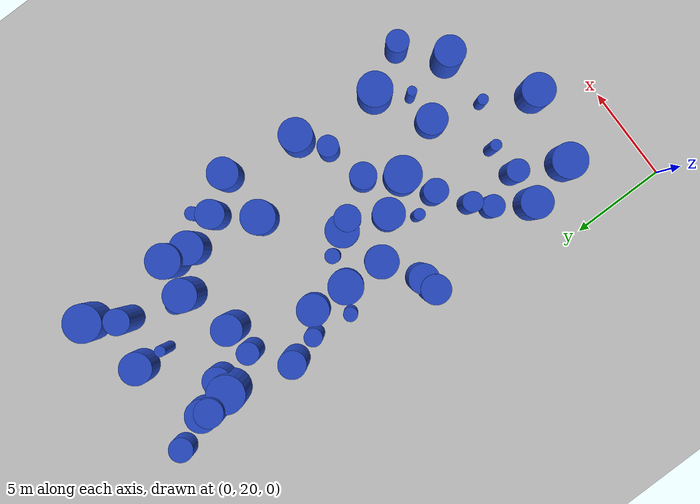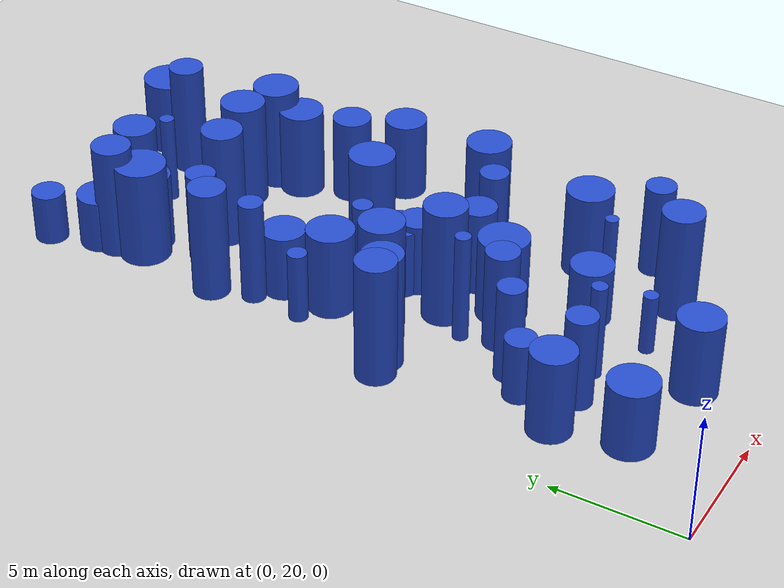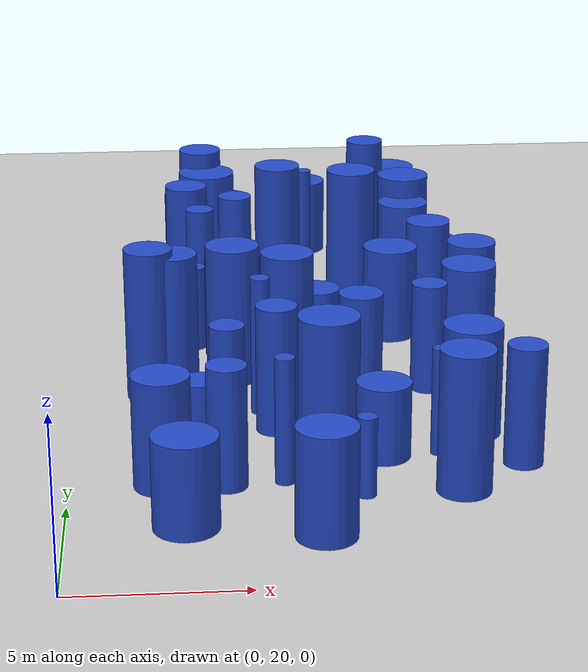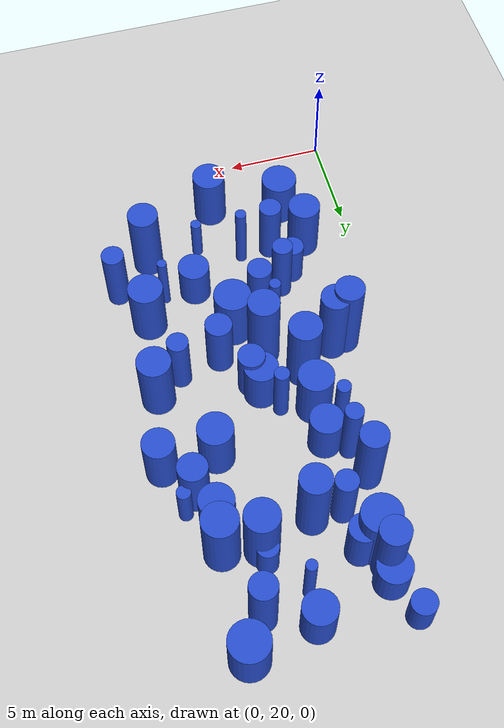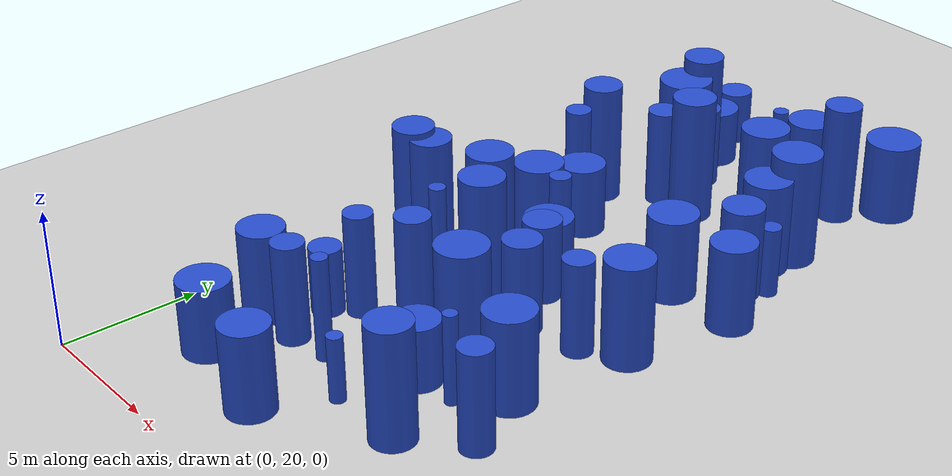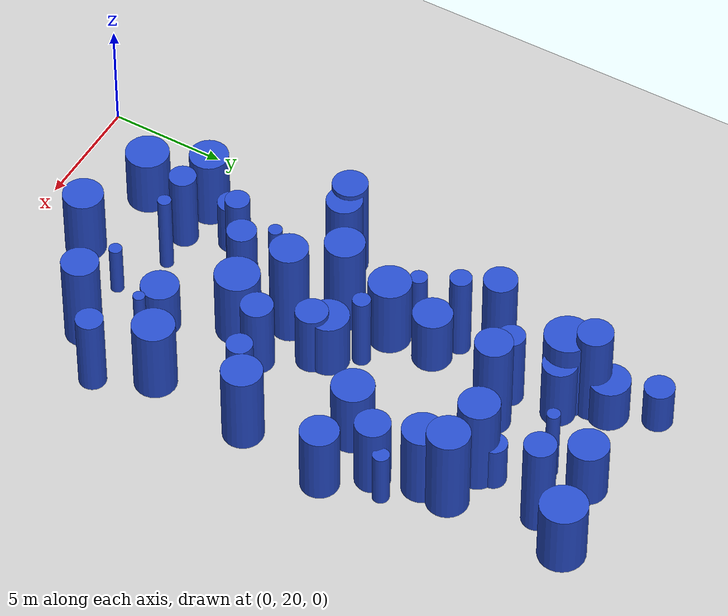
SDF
<sdf version="1.6">
 <world name="default">
  <model name="ground_plane">
   <static>1</static>
   <link name="link">
    <collision name="collision">
     <geometry><plane><normal>0 0 1</normal><size>100 100</size></plane></geometry>
     <surface><friction><ode><mu>100</mu><mu2>50</mu2></ode></friction></surface>
    </collision>
    <visual name="visual">
     <cast_shadows>0</cast_shadows>
     <geometry><plane><normal>0 0 1</normal><size>100 100</size></plane></geometry>
     <material>
      <script><uri>file://media/materials/scripts/gazebo.material</uri><name>Gazebo/Grey</name></script>
     </material>
    </visual>
   </link>
  </model>
  <model name="0">
   <static>0</static>
   <link name="link">
    <inertial>
     <mass>2</mass>
     <inertia><ixx>2.40197</ixx><ixy>0</ixy><ixz>0</ixz><iyy>2.40197</iyy><iyz>0</iyz><izz>0.81177</izz></inertia>
    </inertial>
    <collision name="collision">
     <geometry><cylinder><length>3.46071</length><radius>0.900983</radius></cylinder></geometry>
     <surface><contact><collide_without_contact>1</collide_without_contact></contact></surface>
    </collision>
    <visual name="visual">
     <geometry><cylinder><length>3.46071</length><radius>0.900983</radius></cylinder></geometry>
     <material>
      <script><uri>file://media/materials/scripts/gazebo.material</uri><name>Gazebo/Blue</name></script>
     </material>
    </visual>
    <gravity>0</gravity>
   </link>
   <pose>11.8767 29.2592 1.73036 0 -0 0</pose>
  </model>
  <model name="1">
   <static>0</static>
   <link name="link">
    <inertial>
     <mass>2</mass>
     <inertia>
      <ixx>0.889597</ixx>
      <ixy>0</ixy>
      <ixz>0</ixz>
      <iyy>0.889597</iyy>
      <iyz>0</iyz>
      <izz>0.404641</izz>
     </inertia>
    </inertial>
    <collision name="collision">
     <geometry><cylinder><length>2.03068</length><radius>0.636114</radius></cylinder></geometry>
     <surface><contact><collide_without_contact>1</collide_without_contact></contact></surface>
    </collision>
    <visual name="visual">
     <geometry><cylinder><length>2.03068</length><radius>0.636114</radius></cylinder></geometry>
     <material>
      <script><uri>file://media/materials/scripts/gazebo.material</uri><name>Gazebo/Blue</name></script>
     </material>
    </visual>
    <gravity>0</gravity>
   </link>
   <pose>3.46889 47.8136 1.01534 0 -0 0</pose>
  </model>
  <model name="2">
   <static>0</static>
   <link name="link">
    <inertial>
     <mass>2</mass>
     <inertia>
      <ixx>2.45511</ixx>
      <ixy>0</ixy>
      <ixz>0</ixz>
      <iyy>2.45511</iyy>
      <iyz>0</iyz>
      <izz>0.0849773</izz>
     </inertia>
    </inertial>
    <collision name="collision">
     <geometry><cylinder><length>3.8047</length><radius>0.291509</radius></cylinder></geometry>
     <surface><contact><collide_without_contact>1</collide_without_contact></contact></surface>
    </collision>
    <visual name="visual">
     <geometry><cylinder><length>3.8047</length><radius>0.291509</radius></cylinder></geometry>
     <material>
      <script><uri>file://media/materials/scripts/gazebo.material</uri><name>Gazebo/Blue</name></script>
     </material>
    </visual>
    <gravity>0</gravity>
   </link>
   <pose>6.11121 26.2319 1.90235 0 -0 0</pose>
  </model>
  <model name="3">
   <static>0</static>
   <link name="link">
    <inertial>
     <mass>2</mass>
     <inertia><ixx>3.44328</ixx><ixy>0</ixy><ixz>0</ixz><iyy>3.44328</iyy><iyz>0</iyz><izz>0.742387</izz></inertia>
    </inertial>
    <collision name="collision">
     <geometry><cylinder><length>4.29331</length><radius>0.861619</radius></cylinder></geometry>
     <surface><contact><collide_without_contact>1</collide_without_contact></contact></surface>
    </collision>
    <visual name="visual">
     <geometry><cylinder><length>4.29331</length><radius>0.861619</radius></cylinder></geometry>
     <material>
      <script><uri>file://media/materials/scripts/gazebo.material</uri><name>Gazebo/Blue</name></script>
     </material>
    </visual>
    <gravity>0</gravity>
   </link>
   <pose>9.53934 42.8927 2.14666 0 -0 0</pose>
  </model>
  <model name="4">
   <static>0</static>
   <link name="link">
    <inertial>
     <mass>2</mass>
     <inertia><ixx>1.52078</ixx><ixy>0</ixy><ixz>0</ixz><iyy>1.52078</iyy><iyz>0</iyz><izz>0.706881</izz></inertia>
    </inertial>
    <collision name="collision">
     <geometry><cylinder><length>2.64651</length><radius>0.840762</radius></cylinder></geometry>
     <surface><contact><collide_without_contact>1</collide_without_contact></contact></surface>
    </collision>
    <visual name="visual">
     <geometry><cylinder><length>2.64651</length><radius>0.840762</radius></cylinder></geometry>
     <material>
      <script><uri>file://media/materials/scripts/gazebo.material</uri><name>Gazebo/Blue</name></script>
     </material>
    </visual>
    <gravity>0</gravity>
   </link>
   <pose>5.06571 38.2801 1.32326 0 -0 0</pose>
  </model>
  <model name="12">
   <static>0</static>
   <link name="link">
    <inertial>
     <mass>2</mass>
     <inertia><ixx>2.82446</ixx><ixy>0</ixy><ixz>0</ixz><iyy>2.82446</iyy><iyz>0</iyz><izz>0.396141</izz></inertia>
    </inertial>
    <collision name="collision">
     <geometry><cylinder><length>3.96967</length><radius>0.629398</radius></cylinder></geometry>
     <surface><contact><collide_without_contact>1</collide_without_contact></contact></surface>
    </collision>
    <visual name="visual">
     <geometry><cylinder><length>3.96967</length><radius>0.629398</radius></cylinder></geometry>
     <material>
      <script><uri>file://media/materials/scripts/gazebo.material</uri><name>Gazebo/Blue</name></script>
     </material>
    </visual>
    <gravity>0</gravity>
   </link>
   <pose>6.09867 29.9204 1.98484 0 -0 0</pose>
  </model>
  <model name="17">
   <static>0</static>
   <link name="link">
    <inertial>
     <mass>2</mass>
     <inertia><ixx>1.66425</ixx><ixy>0</ixy><ixz>0</ixz><iyy>1.66425</iyy><iyz>0</iyz><izz>0.867576</izz></inertia>
    </inertial>
    <collision name="collision">
     <geometry><cylinder><length>2.71712</length><radius>0.931438</radius></cylinder></geometry>
     <surface><contact><collide_without_contact>1</collide_without_contact></contact></surface>
    </collision>
    <visual name="visual">
     <geometry><cylinder><length>2.71712</length><radius>0.931438</radius></cylinder></geometry>
     <material>
      <script><uri>file://media/materials/scripts/gazebo.material</uri><name>Gazebo/Blue</name></script>
     </material>
    </visual>
    <gravity>0</gravity>
   </link>
   <pose>3.28204 23.6146 1.35856 0 -0 0</pose>
  </model>
  <model name="21">
   <static>0</static>
   <link name="link">
    <inertial>
     <mass>2</mass>
     <inertia><ixx>3.67494</ixx><ixy>0</ixy><ixz>0</ixz><iyy>3.67494</iyy><iyz>0</iyz><izz>0.558673</izz></inertia>
    </inertial>
    <collision name="collision">
     <geometry><cylinder><length>4.51371</length><radius>0.747444</radius></cylinder></geometry>
     <surface><contact><collide_without_contact>1</collide_without_contact></contact></surface>
    </collision>
    <visual name="visual">
     <geometry><cylinder><length>4.51371</length><radius>0.747444</radius></cylinder></geometry>
     <material>
      <script><uri>file://media/materials/scripts/gazebo.material</uri><name>Gazebo/Blue</name></script>
     </material>
    </visual>
    <gravity>0</gravity>
   </link>
   <pose>4.16992 45.1792 2.25686 0 -0 0</pose>
  </model>
  <model name="23">
   <static>0</static>
   <link name="link">
    <inertial>
     <mass>2</mass>
     <inertia>
      <ixx>3.22473</ixx>
      <ixy>0</ixy>
      <ixz>0</ixz>
      <iyy>3.22473</iyy>
      <iyz>0</iyz>
      <izz>0.0871934</izz>
     </inertia>
    </inertial>
    <collision name="collision">
     <geometry><cylinder><length>4.36884</length><radius>0.295285</radius></cylinder></geometry>
     <surface><contact><collide_without_contact>1</collide_without_contact></contact></surface>
    </collision>
    <visual name="visual">
     <geometry><cylinder><length>4.36884</length><radius>0.295285</radius></cylinder></geometry>
     <material>
      <script><uri>file://media/materials/scripts/gazebo.material</uri><name>Gazebo/Blue</name></script>
     </material>
    </visual>
    <gravity>0</gravity>
   </link>
   <pose>5.68019 31.273 2.18442 0 -0 0</pose>
  </model>
  <model name="29">
   <static>0</static>
   <link name="link">
    <inertial>
     <mass>2</mass>
     <inertia><ixx>2.78165</ixx><ixy>0</ixy><ixz>0</ixz><iyy>2.78165</iyy><iyz>0</iyz><izz>0.746331</izz></inertia>
    </inertial>
    <collision name="collision">
     <geometry><cylinder><length>3.80143</length><radius>0.863904</radius></cylinder></geometry>
     <surface><contact><collide_without_contact>1</collide_without_contact></contact></surface>
    </collision>
    <visual name="visual">
     <geometry><cylinder><length>3.80143</length><radius>0.863904</radius></cylinder></geometry>
     <material>
      <script><uri>file://media/materials/scripts/gazebo.material</uri><name>Gazebo/Blue</name></script>
     </material>
    </visual>
    <gravity>0</gravity>
   </link>
   <pose>12.4132 33.7284 1.90072 0 -0 0</pose>
  </model>
  <model name="38">
   <static>0</static>
   <link name="link">
    <inertial>
     <mass>2</mass>
     <inertia><ixx>1.23877</ixx><ixy>0</ixy><ixz>0</ixz><iyy>1.23877</iyy><iyz>0</iyz><izz>0.661511</izz></inertia>
    </inertial>
    <collision name="collision">
     <geometry><cylinder><length>2.33412</length><radius>0.813333</radius></cylinder></geometry>
     <surface><contact><collide_without_contact>1</collide_without_contact></contact></surface>
    </collision>
    <visual name="visual">
     <geometry><cylinder><length>2.33412</length><radius>0.813333</radius></cylinder></geometry>
     <material>
      <script><uri>file://media/materials/scripts/gazebo.material</uri><name>Gazebo/Blue</name></script>
     </material>
    </visual>
    <gravity>0</gravity>
   </link>
   <pose>9.0777 27.7968 1.16706 0 -0 0</pose>
  </model>
  <model name="49">
   <static>0</static>
   <link name="link">
    <inertial>
     <mass>2</mass>
     <inertia><ixx>3.34845</ixx><ixy>0</ixy><ixz>0</ixz><iyy>3.34845</iyy><iyz>0</iyz><izz>0.625624</izz></inertia>
    </inertial>
    <collision name="collision">
     <geometry><cylinder><length>4.26777</length><radius>0.790964</radius></cylinder></geometry>
     <surface><contact><collide_without_contact>1</collide_without_contact></contact></surface>
    </collision>
    <visual name="visual">
     <geometry><cylinder><length>4.26777</length><radius>0.790964</radius></cylinder></geometry>
     <material>
      <script><uri>file://media/materials/scripts/gazebo.material</uri><name>Gazebo/Blue</name></script>
     </material>
    </visual>
    <gravity>0</gravity>
   </link>
   <pose>11.0842 25.3159 2.13388 0 -0 0</pose>
  </model>
  <model name="55">
   <static>0</static>
   <link name="link">
    <inertial>
     <mass>2</mass>
     <inertia><ixx>1.0028</ixx><ixy>0</ixy><ixz>0</ixz><iyy>1.0028</iyy><iyz>0</iyz><izz>0.0791024</izz></inertia>
    </inertial>
    <collision name="collision">
     <geometry><cylinder><length>2.40406</length><radius>0.281252</radius></cylinder></geometry>
     <surface><contact><collide_without_contact>1</collide_without_contact></contact></surface>
    </collision>
    <visual name="visual">
     <geometry><cylinder><length>2.40406</length><radius>0.281252</radius></cylinder></geometry>
     <material>
      <script><uri>file://media/materials/scripts/gazebo.material</uri><name>Gazebo/Blue</name></script>
     </material>
    </visual>
    <gravity>0</gravity>
   </link>
   <pose>8.32268 25.1985 1.20203 0 -0 0</pose>
  </model>
  <model name="56">
   <static>0</static>
   <link name="link">
    <inertial>
     <mass>2</mass>
     <inertia>
      <ixx>1.84784</ixx>
      <ixy>0</ixy>
      <ixz>0</ixz>
      <iyy>1.84784</iyy>
      <iyz>0</iyz>
      <izz>0.0636746</izz>
     </inertia>
    </inertial>
    <collision name="collision">
     <geometry><cylinder><length>3.30091</length><radius>0.252338</radius></cylinder></geometry>
     <surface><contact><collide_without_contact>1</collide_without_contact></contact></surface>
    </collision>
    <visual name="visual">
     <geometry><cylinder><length>3.30091</length><radius>0.252338</radius></cylinder></geometry>
     <material>
      <script><uri>file://media/materials/scripts/gazebo.material</uri><name>Gazebo/Blue</name></script>
     </material>
    </visual>
    <gravity>0</gravity>
   </link>
   <pose>10.7197 27.8588 1.65046 0 -0 0</pose>
  </model>
  <model name="60">
   <static>0</static>
   <link name="link">
    <inertial>
     <mass>2</mass>
     <inertia><ixx>2.27596</ixx><ixy>0</ixy><ixz>0</ixz><iyy>2.27596</iyy><iyz>0</iyz><izz>0.815841</izz></inertia>
    </inertial>
    <collision name="collision">
     <geometry><cylinder><length>3.34787</length><radius>0.903239</radius></cylinder></geometry>
     <surface><contact><collide_without_contact>1</collide_without_contact></contact></surface>
    </collision>
    <visual name="visual">
     <geometry><cylinder><length>3.34787</length><radius>0.903239</radius></cylinder></geometry>
     <material>
      <script><uri>file://media/materials/scripts/gazebo.material</uri><name>Gazebo/Blue</name></script>
     </material>
    </visual>
    <gravity>0</gravity>
   </link>
   <pose>5.01444 36.257 1.67394 0 -0 0</pose>
  </model>
  <model name="65">
   <static>0</static>
   <link name="link">
    <inertial>
     <mass>2</mass>
     <inertia><ixx>1.18561</ixx><ixy>0</ixy><ixz>0</ixz><iyy>1.18561</iyy><iyz>0</iyz><izz>0.125849</izz></inertia>
    </inertial>
    <collision name="collision">
     <geometry><cylinder><length>2.59541</length><radius>0.354752</radius></cylinder></geometry>
     <surface><contact><collide_without_contact>1</collide_without_contact></contact></surface>
    </collision>
    <visual name="visual">
     <geometry><cylinder><length>2.59541</length><radius>0.354752</radius></cylinder></geometry>
     <material>
      <script><uri>file://media/materials/scripts/gazebo.material</uri><name>Gazebo/Blue</name></script>
     </material>
    </visual>
    <gravity>0</gravity>
   </link>
   <pose>12.5356 40.1762 1.2977 0 -0 0</pose>
  </model>
  <model name="66">
   <static>0</static>
   <link name="link">
    <inertial>
     <mass>2</mass>
     <inertia><ixx>1.19036</ixx><ixy>0</ixy><ixz>0</ixz><iyy>1.19036</iyy><iyz>0</iyz><izz>0.340374</izz></inertia>
    </inertial>
    <collision name="collision">
     <geometry><cylinder><length>2.47407</length><radius>0.583416</radius></cylinder></geometry>
     <surface><contact><collide_without_contact>1</collide_without_contact></contact></surface>
    </collision>
    <visual name="visual">
     <geometry><cylinder><length>2.47407</length><radius>0.583416</radius></cylinder></geometry>
     <material>
      <script><uri>file://media/materials/scripts/gazebo.material</uri><name>Gazebo/Blue</name></script>
     </material>
    </visual>
    <gravity>0</gravity>
   </link>
   <pose>3.76922 27.9809 1.23704 0 -0 0</pose>
  </model>
  <model name="75">
   <static>0</static>
   <link name="link">
    <inertial>
     <mass>2</mass>
     <inertia><ixx>4.06872</ixx><ixy>0</ixy><ixz>0</ixz><iyy>4.06872</iyy><iyz>0</iyz><izz>0.624132</izz></inertia>
    </inertial>
    <collision name="collision">
     <geometry><cylinder><length>4.74762</length><radius>0.790021</radius></cylinder></geometry>
     <surface><contact><collide_without_contact>1</collide_without_contact></contact></surface>
    </collision>
    <visual name="visual">
     <geometry><cylinder><length>4.74762</length><radius>0.790021</radius></cylinder></geometry>
     <material>
      <script><uri>file://media/materials/scripts/gazebo.material</uri><name>Gazebo/Blue</name></script>
     </material>
    </visual>
    <gravity>0</gravity>
   </link>
   <pose>6.83529 42.0397 2.37381 0 -0 0</pose>
  </model>
  <model name="76">
   <static>0</static>
   <link name="link">
    <inertial>
     <mass>2</mass>
     <inertia><ixx>4.08742</ixx><ixy>0</ixy><ixz>0</ixz><iyy>4.08742</iyy><iyz>0</iyz><izz>0.660231</izz></inertia>
    </inertial>
    <collision name="collision">
     <geometry><cylinder><length>4.74803</length><radius>0.812546</radius></cylinder></geometry>
     <surface><contact><collide_without_contact>1</collide_without_contact></contact></surface>
    </collision>
    <visual name="visual">
     <geometry><cylinder><length>4.74803</length><radius>0.812546</radius></cylinder></geometry>
     <material>
      <script><uri>file://media/materials/scripts/gazebo.material</uri><name>Gazebo/Blue</name></script>
     </material>
    </visual>
    <gravity>0</gravity>
   </link>
   <pose>6.57905 32.4521 2.37402 0 -0 0</pose>
  </model>
  <model name="81">
   <static>0</static>
   <link name="link">
    <inertial>
     <mass>2</mass>
     <inertia><ixx>2.21257</ixx><ixy>0</ixy><ixz>0</ixz><iyy>2.21257</iyy><iyz>0</iyz><izz>0.306287</izz></inertia>
    </inertial>
    <collision name="collision">
     <geometry><cylinder><length>3.51519</length><radius>0.553432</radius></cylinder></geometry>
     <surface><contact><collide_without_contact>1</collide_without_contact></contact></surface>
    </collision>
    <visual name="visual">
     <geometry><cylinder><length>3.51519</length><radius>0.553432</radius></cylinder></geometry>
     <material>
      <script><uri>file://media/materials/scripts/gazebo.material</uri><name>Gazebo/Blue</name></script>
     </material>
    </visual>
    <gravity>0</gravity>
   </link>
   <pose>11.0425 32.7903 1.75759 0 -0 0</pose>
  </model>
  <model name="84">
   <static>0</static>
   <link name="link">
    <inertial>
     <mass>2</mass>
     <inertia><ixx>3.84942</ixx><ixy>0</ixy><ixz>0</ixz><iyy>3.84942</iyy><iyz>0</iyz><izz>0.583531</izz></inertia>
    </inertial>
    <collision name="collision">
     <geometry><cylinder><length>4.62017</length><radius>0.763892</radius></cylinder></geometry>
     <surface><contact><collide_without_contact>1</collide_without_contact></contact></surface>
    </collision>
    <visual name="visual">
     <geometry><cylinder><length>4.62017</length><radius>0.763892</radius></cylinder></geometry>
     <material>
      <script><uri>file://media/materials/scripts/gazebo.material</uri><name>Gazebo/Blue</name></script>
     </material>
    </visual>
    <gravity>0</gravity>
   </link>
   <pose>3.06605 32.9901 2.31008 0 -0 0</pose>
  </model>
  <model name="89">
   <static>0</static>
   <link name="link">
    <inertial>
     <mass>2</mass>
     <inertia><ixx>1.13794</ixx><ixy>0</ixy><ixz>0</ixz><iyy>1.13794</iyy><iyz>0</iyz><izz>0.753401</izz></inertia>
    </inertial>
    <collision name="collision">
     <geometry><cylinder><length>2.13716</length><radius>0.867987</radius></cylinder></geometry>
     <surface><contact><collide_without_contact>1</collide_without_contact></contact></surface>
    </collision>
    <visual name="visual">
     <geometry><cylinder><length>2.13716</length><radius>0.867987</radius></cylinder></geometry>
     <material>
      <script><uri>file://media/materials/scripts/gazebo.material</uri><name>Gazebo/Blue</name></script>
     </material>
    </visual>
    <gravity>0</gravity>
   </link>
   <pose>4.20419 45.9485 1.06858 0 -0 0</pose>
  </model>
  <model name="91">
   <static>0</static>
   <link name="link">
    <inertial>
     <mass>2</mass>
     <inertia><ixx>1.98681</ixx><ixy>0</ixy><ixz>0</ixz><iyy>1.98681</iyy><iyz>0</iyz><izz>0.983829</izz></inertia>
    </inertial>
    <collision name="collision">
     <geometry><cylinder><length>2.99489</length><radius>0.991881</radius></cylinder></geometry>
     <surface><contact><collide_without_contact>1</collide_without_contact></contact></surface>
    </collision>
    <visual name="visual">
     <geometry><cylinder><length>2.99489</length><radius>0.991881</radius></cylinder></geometry>
     <material>
      <script><uri>file://media/materials/scripts/gazebo.material</uri><name>Gazebo/Blue</name></script>
     </material>
    </visual>
    <gravity>0</gravity>
   </link>
   <pose>11.4309 47.7421 1.49744 0 -0 0</pose>
  </model>
  <model name="107">
   <static>0</static>
   <link name="link">
    <inertial>
     <mass>2</mass>
     <inertia><ixx>2.44999</ixx><ixy>0</ixy><ixz>0</ixz><iyy>2.44999</iyy><iyz>0</iyz><izz>0.747513</izz></inertia>
    </inertial>
    <collision name="collision">
     <geometry><cylinder><length>3.5295</length><radius>0.864588</radius></cylinder></geometry>
     <surface><contact><collide_without_contact>1</collide_without_contact></contact></surface>
    </collision>
    <visual name="visual">
     <geometry><cylinder><length>3.5295</length><radius>0.864588</radius></cylinder></geometry>
     <material>
      <script><uri>file://media/materials/scripts/gazebo.material</uri><name>Gazebo/Blue</name></script>
     </material>
    </visual>
    <gravity>0</gravity>
   </link>
   <pose>11.2421 41.3264 1.76475 0 -0 0</pose>
  </model>
  <model name="121">
   <static>0</static>
   <link name="link">
    <inertial>
     <mass>2</mass>
     <inertia>
      <ixx>0.938584</ixx>
      <ixy>0</ixy>
      <ixz>0</ixz>
      <iyy>0.938584</iyy>
      <iyz>0</iyz>
      <izz>0.296077</izz>
     </inertia>
    </inertial>
    <collision name="collision">
     <geometry><cylinder><length>2.17791</length><radius>0.544129</radius></cylinder></geometry>
     <surface><contact><collide_without_contact>1</collide_without_contact></contact></surface>
    </collision>
    <visual name="visual">
     <geometry><cylinder><length>2.17791</length><radius>0.544129</radius></cylinder></geometry>
     <material>
      <script><uri>file://media/materials/scripts/gazebo.material</uri><name>Gazebo/Blue</name></script>
     </material>
    </visual>
    <gravity>0</gravity>
   </link>
   <pose>9.45897 43.5755 1.08895 0 -0 0</pose>
  </model>
  <model name="122">
   <static>0</static>
   <link name="link">
    <inertial>
     <mass>2</mass>
     <inertia><ixx>2.03989</ixx><ixy>0</ixy><ixz>0</ixz><iyy>2.03989</iyy><iyz>0</iyz><izz>0.80967</izz></inertia>
    </inertial>
    <collision name="collision">
     <geometry><cylinder><length>3.13214</length><radius>0.899817</radius></cylinder></geometry>
     <surface><contact><collide_without_contact>1</collide_without_contact></contact></surface>
    </collision>
    <visual name="visual">
     <geometry><cylinder><length>3.13214</length><radius>0.899817</radius></cylinder></geometry>
     <material>
      <script><uri>file://media/materials/scripts/gazebo.material</uri><name>Gazebo/Blue</name></script>
     </material>
    </visual>
    <gravity>0</gravity>
   </link>
   <pose>10.3738 37.6424 1.56607 0 -0 0</pose>
  </model>
  <model name="128">
   <static>0</static>
   <link name="link">
    <inertial>
     <mass>2</mass>
     <inertia><ixx>4.19355</ixx><ixy>0</ixy><ixz>0</ixz><iyy>4.19355</iyy><iyz>0</iyz><izz>0.568289</izz></inertia>
    </inertial>
    <collision name="collision">
     <geometry><cylinder><length>4.84318</length><radius>0.75385</radius></cylinder></geometry>
     <surface><contact><collide_without_contact>1</collide_without_contact></contact></surface>
    </collision>
    <visual name="visual">
     <geometry><cylinder><length>4.84318</length><radius>0.75385</radius></cylinder></geometry>
     <material>
      <script><uri>file://media/materials/scripts/gazebo.material</uri><name>Gazebo/Blue</name></script>
     </material>
    </visual>
    <gravity>0</gravity>
   </link>
   <pose>2.32334 32.8301 2.42159 0 -0 0</pose>
  </model>
  <model name="130">
   <static>0</static>
   <link name="link">
    <inertial>
     <mass>2</mass>
     <inertia><ixx>2.29747</ixx><ixy>0</ixy><ixz>0</ixz><iyy>2.29747</iyy><iyz>0</iyz><izz>0.917787</izz></inertia>
    </inertial>
    <collision name="collision">
     <geometry><cylinder><length>3.32137</length><radius>0.958012</radius></cylinder></geometry>
     <surface><contact><collide_without_contact>1</collide_without_contact></contact></surface>
    </collision>
    <visual name="visual">
     <geometry><cylinder><length>3.32137</length><radius>0.958012</radius></cylinder></geometry>
     <material>
      <script><uri>file://media/materials/scripts/gazebo.material</uri><name>Gazebo/Blue</name></script>
     </material>
    </visual>
    <gravity>0</gravity>
   </link>
   <pose>7.72279 30.676 1.66068 0 -0 0</pose>
  </model>
  <model name="141">
   <static>0</static>
   <link name="link">
    <inertial>
     <mass>2</mass>
     <inertia><ixx>2.22837</ixx><ixy>0</ixy><ixz>0</ixz><iyy>2.22837</iyy><iyz>0</iyz><izz>0.55836</izz></inertia>
    </inertial>
    <collision name="collision">
     <geometry><cylinder><length>3.41982</length><radius>0.747235</radius></cylinder></geometry>
     <surface><contact><collide_without_contact>1</collide_without_contact></contact></surface>
    </collision>
    <visual name="visual">
     <geometry><cylinder><length>3.41982</length><radius>0.747235</radius></cylinder></geometry>
     <material>
      <script><uri>file://media/materials/scripts/gazebo.material</uri><name>Gazebo/Blue</name></script>
     </material>
    </visual>
    <gravity>0</gravity>
   </link>
   <pose>11.8938 39.4243 1.70991 0 -0 0</pose>
  </model>
  <model name="142">
   <static>0</static>
   <link name="link">
    <inertial>
     <mass>2</mass>
     <inertia><ixx>2.57149</ixx><ixy>0</ixy><ixz>0</ixz><iyy>2.57149</iyy><iyz>0</iyz><izz>0.273123</izz></inertia>
    </inertial>
    <collision name="collision">
     <geometry><cylinder><length>3.82225</length><radius>0.522611</radius></cylinder></geometry>
     <surface><contact><collide_without_contact>1</collide_without_contact></contact></surface>
    </collision>
    <visual name="visual">
     <geometry><cylinder><length>3.82225</length><radius>0.522611</radius></cylinder></geometry>
     <material>
      <script><uri>file://media/materials/scripts/gazebo.material</uri><name>Gazebo/Blue</name></script>
     </material>
    </visual>
    <gravity>0</gravity>
   </link>
   <pose>4.58908 28.803 1.91112 0 -0 0</pose>
  </model>
  <model name="143">
   <static>0</static>
   <link name="link">
    <inertial>
     <mass>2</mass>
     <inertia><ixx>2.08062</ixx><ixy>0</ixy><ixz>0</ixz><iyy>2.08062</iyy><iyz>0</iyz><izz>0.745942</izz></inertia>
    </inertial>
    <collision name="collision">
     <geometry><cylinder><length>3.20092</length><radius>0.863679</radius></cylinder></geometry>
     <surface><contact><collide_without_contact>1</collide_without_contact></contact></surface>
    </collision>
    <visual name="visual">
     <geometry><cylinder><length>3.20092</length><radius>0.863679</radius></cylinder></geometry>
     <material>
      <script><uri>file://media/materials/scripts/gazebo.material</uri><name>Gazebo/Blue</name></script>
     </material>
    </visual>
    <gravity>0</gravity>
   </link>
   <pose>7.01087 22.8325 1.60046 0 -0 0</pose>
  </model>
  <model name="144">
   <static>0</static>
   <link name="link">
    <inertial>
     <mass>2</mass>
     <inertia><ixx>3.2992</ixx><ixy>0</ixy><ixz>0</ixz><iyy>3.2992</iyy><iyz>0</iyz><izz>0.796339</izz></inertia>
    </inertial>
    <collision name="collision">
     <geometry><cylinder><length>4.17207</length><radius>0.892378</radius></cylinder></geometry>
     <surface><contact><collide_without_contact>1</collide_without_contact></contact></surface>
    </collision>
    <visual name="visual">
     <geometry><cylinder><length>4.17207</length><radius>0.892378</radius></cylinder></geometry>
     <material>
      <script><uri>file://media/materials/scripts/gazebo.material</uri><name>Gazebo/Blue</name></script>
     </material>
    </visual>
    <gravity>0</gravity>
   </link>
   <pose>11.3766 42.5503 2.08603 0 -0 0</pose>
  </model>
  <model name="149">
   <static>0</static>
   <link name="link">
    <inertial>
     <mass>2</mass>
     <inertia>
      <ixx>2.16285</ixx>
      <ixy>0</ixy>
      <ixz>0</ixz>
      <iyy>2.16285</iyy>
      <iyz>0</iyz>
      <izz>0.0800078</izz>
     </inertia>
    </inertial>
    <collision name="collision">
     <geometry><cylinder><length>3.5689</length><radius>0.282857</radius></cylinder></geometry>
     <surface><contact><collide_without_contact>1</collide_without_contact></contact></surface>
    </collision>
    <visual name="visual">
     <geometry><cylinder><length>3.5689</length><radius>0.282857</radius></cylinder></geometry>
     <material>
      <script><uri>file://media/materials/scripts/gazebo.material</uri><name>Gazebo/Blue</name></script>
     </material>
    </visual>
    <gravity>0</gravity>
   </link>
   <pose>7.99764 45.3995 1.78445 0 -0 0</pose>
  </model>
  <model name="151">
   <static>0</static>
   <link name="link">
    <inertial>
     <mass>2</mass>
     <inertia><ixx>1.79952</ixx><ixy>0</ixy><ixz>0</ixz><iyy>1.79952</iyy><iyz>0</iyz><izz>0.532405</izz></inertia>
    </inertial>
    <collision name="collision">
     <geometry><cylinder><length>3.03314</length><radius>0.729661</radius></cylinder></geometry>
     <surface><contact><collide_without_contact>1</collide_without_contact></contact></surface>
    </collision>
    <visual name="visual">
     <geometry><cylinder><length>3.03314</length><radius>0.729661</radius></cylinder></geometry>
     <material>
      <script><uri>file://media/materials/scripts/gazebo.material</uri><name>Gazebo/Blue</name></script>
     </material>
    </visual>
    <gravity>0</gravity>
   </link>
   <pose>5.14651 44.1604 1.51657 0 -0 0</pose>
  </model>
  <model name="159">
   <static>0</static>
   <link name="link">
    <inertial>
     <mass>2</mass>
     <inertia><ixx>2.41753</ixx><ixy>0</ixy><ixz>0</ixz><iyy>2.41753</iyy><iyz>0</iyz><izz>0.33652</izz></inertia>
    </inertial>
    <collision name="collision">
     <geometry><cylinder><length>3.67364</length><radius>0.580103</radius></cylinder></geometry>
     <surface><contact><collide_without_contact>1</collide_without_contact></contact></surface>
    </collision>
    <visual name="visual">
     <geometry><cylinder><length>3.67364</length><radius>0.580103</radius></cylinder></geometry>
     <material>
      <script><uri>file://media/materials/scripts/gazebo.material</uri><name>Gazebo/Blue</name></script>
     </material>
    </visual>
    <gravity>0</gravity>
   </link>
   <pose>4.4809 26.1024 1.83682 0 -0 0</pose>
  </model>
  <model name="160">
   <static>0</static>
   <link name="link">
    <inertial>
     <mass>2</mass>
     <inertia><ixx>1.587</ixx><ixy>0</ixy><ixz>0</ixz><iyy>1.587</iyy><iyz>0</iyz><izz>0.717672</izz></inertia>
    </inertial>
    <collision name="collision">
     <geometry><cylinder><length>2.71459</length><radius>0.847155</radius></cylinder></geometry>
     <surface><contact><collide_without_contact>1</collide_without_contact></contact></surface>
    </collision>
    <visual name="visual">
     <geometry><cylinder><length>2.71459</length><radius>0.847155</radius></cylinder></geometry>
     <material>
      <script><uri>file://media/materials/scripts/gazebo.material</uri><name>Gazebo/Blue</name></script>
     </material>
    </visual>
    <gravity>0</gravity>
   </link>
   <pose>8.05956 47.0475 1.35729 0 -0 0</pose>
  </model>
  <model name="172">
   <static>0</static>
   <link name="link">
    <inertial>
     <mass>2</mass>
     <inertia><ixx>2.4119</ixx><ixy>0</ixy><ixz>0</ixz><iyy>2.4119</iyy><iyz>0</iyz><izz>0.334756</izz></inertia>
    </inertial>
    <collision name="collision">
     <geometry><cylinder><length>3.66976</length><radius>0.578581</radius></cylinder></geometry>
     <surface><contact><collide_without_contact>1</collide_without_contact></contact></surface>
    </collision>
    <visual name="visual">
     <geometry><cylinder><length>3.66976</length><radius>0.578581</radius></cylinder></geometry>
     <material>
      <script><uri>file://media/materials/scripts/gazebo.material</uri><name>Gazebo/Blue</name></script>
     </material>
    </visual>
    <gravity>0</gravity>
   </link>
   <pose>5.31905 42.0284 1.83488 0 -0 0</pose>
  </model>
  <model name="173">
   <static>0</static>
   <link name="link">
    <inertial>
     <mass>2</mass>
     <inertia><ixx>1.70372</ixx><ixy>0</ixy><ixz>0</ixz><iyy>1.70372</iyy><iyz>0</iyz><izz>0.477702</izz></inertia>
    </inertial>
    <collision name="collision">
     <geometry><cylinder><length>2.96467</length><radius>0.69116</radius></cylinder></geometry>
     <surface><contact><collide_without_contact>1</collide_without_contact></contact></surface>
    </collision>
    <visual name="visual">
     <geometry><cylinder><length>2.96467</length><radius>0.69116</radius></cylinder></geometry>
     <material>
      <script><uri>file://media/materials/scripts/gazebo.material</uri><name>Gazebo/Blue</name></script>
     </material>
    </visual>
    <gravity>0</gravity>
   </link>
   <pose>7.67345 34.1495 1.48233 0 -0 0</pose>
  </model>
  <model name="179">
   <static>0</static>
   <link name="link">
    <inertial>
     <mass>2</mass>
     <inertia><ixx>2.24414</ixx><ixy>0</ixy><ixz>0</ixz><iyy>2.24414</iyy><iyz>0</iyz><izz>0.695815</izz></inertia>
    </inertial>
    <collision name="collision">
     <geometry><cylinder><length>3.37304</length><radius>0.834156</radius></cylinder></geometry>
     <surface><contact><collide_without_contact>1</collide_without_contact></contact></surface>
    </collision>
    <visual name="visual">
     <geometry><cylinder><length>3.37304</length><radius>0.834156</radius></cylinder></geometry>
     <material>
      <script><uri>file://media/materials/scripts/gazebo.material</uri><name>Gazebo/Blue</name></script>
     </material>
    </visual>
    <gravity>0</gravity>
   </link>
   <pose>2.65622 26.2548 1.68652 0 -0 0</pose>
  </model>
  <model name="189">
   <static>0</static>
   <link name="link">
    <inertial>
     <mass>2</mass>
     <inertia><ixx>2.23636</ixx><ixy>0</ixy><ixz>0</ixz><iyy>2.23636</iyy><iyz>0</iyz><izz>0.148612</izz></inertia>
    </inertial>
    <collision name="collision">
     <geometry><cylinder><length>3.60171</length><radius>0.385503</radius></cylinder></geometry>
     <surface><contact><collide_without_contact>1</collide_without_contact></contact></surface>
    </collision>
    <visual name="visual">
     <geometry><cylinder><length>3.60171</length><radius>0.385503</radius></cylinder></geometry>
     <material>
      <script><uri>file://media/materials/scripts/gazebo.material</uri><name>Gazebo/Blue</name></script>
     </material>
    </visual>
    <gravity>0</gravity>
   </link>
   <pose>6.62027 35.8617 1.80086 0 -0 0</pose>
  </model>
  <model name="191">
   <static>0</static>
   <link name="link">
    <inertial>
     <mass>2</mass>
     <inertia><ixx>3.6846</ixx><ixy>0</ixy><ixz>0</ixz><iyy>3.6846</iyy><iyz>0</iyz><izz>0.720558</izz></inertia>
    </inertial>
    <collision name="collision">
     <geometry><cylinder><length>4.46609</length><radius>0.848857</radius></cylinder></geometry>
     <surface><contact><collide_without_contact>1</collide_without_contact></contact></surface>
    </collision>
    <visual name="visual">
     <geometry><cylinder><length>4.46609</length><radius>0.848857</radius></cylinder></geometry>
     <material>
      <script><uri>file://media/materials/scripts/gazebo.material</uri><name>Gazebo/Blue</name></script>
     </material>
    </visual>
    <gravity>0</gravity>
   </link>
   <pose>4.94776 34.1054 2.23304 0 -0 0</pose>
  </model>
  <model name="194">
   <static>0</static>
   <link name="link">
    <inertial>
     <mass>2</mass>
     <inertia><ixx>1.39867</ixx><ixy>0</ixy><ixz>0</ixz><iyy>1.39867</iyy><iyz>0</iyz><izz>0.134449</izz></inertia>
    </inertial>
    <collision name="collision">
     <geometry><cylinder><length>2.82643</length><radius>0.366673</radius></cylinder></geometry>
     <surface><contact><collide_without_contact>1</collide_without_contact></contact></surface>
    </collision>
    <visual name="visual">
     <geometry><cylinder><length>2.82643</length><radius>0.366673</radius></cylinder></geometry>
     <material>
      <script><uri>file://media/materials/scripts/gazebo.material</uri><name>Gazebo/Blue</name></script>
     </material>
    </visual>
    <gravity>0</gravity>
   </link>
   <pose>3.78266 36.9027 1.41321 0 -0 0</pose>
  </model>
  <model name="197">
   <static>0</static>
   <link name="link">
    <inertial>
     <mass>2</mass>
     <inertia><ixx>2.98537</ixx><ixy>0</ixy><ixz>0</ixz><iyy>2.98537</iyy><iyz>0</iyz><izz>0.214834</izz></inertia>
    </inertial>
    <collision name="collision">
     <geometry><cylinder><length>4.15544</length><radius>0.463502</radius></cylinder></geometry>
     <surface><contact><collide_without_contact>1</collide_without_contact></contact></surface>
    </collision>
    <visual name="visual">
     <geometry><cylinder><length>4.15544</length><radius>0.463502</radius></cylinder></geometry>
     <material>
      <script><uri>file://media/materials/scripts/gazebo.material</uri><name>Gazebo/Blue</name></script>
     </material>
    </visual>
    <gravity>0</gravity>
   </link>
   <pose>4.02497 38.9768 2.07772 0 -0 0</pose>
  </model>
  <model name="205">
   <static>0</static>
   <link name="link">
    <inertial>
     <mass>2</mass>
     <inertia><ixx>3.60074</ixx><ixy>0</ixy><ixz>0</ixz><iyy>3.60074</iyy><iyz>0</iyz><izz>0.447805</izz></inertia>
    </inertial>
    <collision name="collision">
     <geometry><cylinder><length>4.50123</length><radius>0.669183</radius></cylinder></geometry>
     <surface><contact><collide_without_contact>1</collide_without_contact></contact></surface>
    </collision>
    <visual name="visual">
     <geometry><cylinder><length>4.50123</length><radius>0.669183</radius></cylinder></geometry>
     <material>
      <script><uri>file://media/materials/scripts/gazebo.material</uri><name>Gazebo/Blue</name></script>
     </material>
    </visual>
    <gravity>0</gravity>
   </link>
   <pose>10.3577 46.0634 2.25061 0 -0 0</pose>
  </model>
  <model name="207">
   <static>0</static>
   <link name="link">
    <inertial>
     <mass>2</mass>
     <inertia><ixx>2.20257</ixx><ixy>0</ixy><ixz>0</ixz><iyy>2.20257</iyy><iyz>0</iyz><izz>0.475126</izz></inertia>
    </inertial>
    <collision name="collision">
     <geometry><cylinder><length>3.43367</length><radius>0.689294</radius></cylinder></geometry>
     <surface><contact><collide_without_contact>1</collide_without_contact></contact></surface>
    </collision>
    <visual name="visual">
     <geometry><cylinder><length>3.43367</length><radius>0.689294</radius></cylinder></geometry>
     <material>
      <script><uri>file://media/materials/scripts/gazebo.material</uri><name>Gazebo/Blue</name></script>
     </material>
    </visual>
    <gravity>0</gravity>
   </link>
   <pose>8.84906 32.282 1.71683 0 -0 0</pose>
  </model>
  <model name="209">
   <static>0</static>
   <link name="link">
    <inertial>
     <mass>2</mass>
     <inertia><ixx>2.42991</ixx><ixy>0</ixy><ixz>0</ixz><iyy>2.42991</iyy><iyz>0</iyz><izz>0.339042</izz></inertia>
    </inertial>
    <collision name="collision">
     <geometry><cylinder><length>3.68271</length><radius>0.582273</radius></cylinder></geometry>
     <surface><contact><collide_without_contact>1</collide_without_contact></contact></surface>
    </collision>
    <visual name="visual">
     <geometry><cylinder><length>3.68271</length><radius>0.582273</radius></cylinder></geometry>
     <material>
      <script><uri>file://media/materials/scripts/gazebo.material</uri><name>Gazebo/Blue</name></script>
     </material>
    </visual>
    <gravity>0</gravity>
   </link>
   <pose>13.0609 26.9856 1.84135 0 -0 0</pose>
  </model>
  <model name="211">
   <static>0</static>
   <link name="link">
    <inertial>
     <mass>2</mass>
     <inertia><ixx>3.65419</ixx><ixy>0</ixy><ixz>0</ixz><iyy>3.65419</iyy><iyz>0</iyz><izz>0.50434</izz></inertia>
    </inertial>
    <collision name="collision">
     <geometry><cylinder><length>4.51798</length><radius>0.710169</radius></cylinder></geometry>
     <surface><contact><collide_without_contact>1</collide_without_contact></contact></surface>
    </collision>
    <visual name="visual">
     <geometry><cylinder><length>4.51798</length><radius>0.710169</radius></cylinder></geometry>
     <material>
      <script><uri>file://media/materials/scripts/gazebo.material</uri><name>Gazebo/Blue</name></script>
     </material>
    </visual>
    <gravity>0</gravity>
   </link>
   <pose>3.59734 40.5532 2.25899 0 -0 0</pose>
  </model>
  <model name="218">
   <static>0</static>
   <link name="link">
    <inertial>
     <mass>2</mass>
     <inertia><ixx>2.04719</ixx><ixy>0</ixy><ixz>0</ixz><iyy>2.04719</iyy><iyz>0</iyz><izz>0.663732</izz></inertia>
    </inertial>
    <collision name="collision">
     <geometry><cylinder><length>3.20811</length><radius>0.814697</radius></cylinder></geometry>
     <surface><contact><collide_without_contact>1</collide_without_contact></contact></surface>
    </collision>
    <visual name="visual">
     <geometry><cylinder><length>3.20811</length><radius>0.814697</radius></cylinder></geometry>
     <material>
      <script><uri>file://media/materials/scripts/gazebo.material</uri><name>Gazebo/Blue</name></script>
     </material>
    </visual>
    <gravity>0</gravity>
   </link>
   <pose>13.1333 37.7189 1.60405 0 -0 0</pose>
  </model>
  <model name="230">
   <static>0</static>
   <link name="link">
    <inertial>
     <mass>2</mass>
     <inertia><ixx>1.61781</ixx><ixy>0</ixy><ixz>0</ixz><iyy>1.61781</iyy><iyz>0</iyz><izz>0.759354</izz></inertia>
    </inertial>
    <collision name="collision">
     <geometry><cylinder><length>2.72558</length><radius>0.871409</radius></cylinder></geometry>
     <surface><contact><collide_without_contact>1</collide_without_contact></contact></surface>
    </collision>
    <visual name="visual">
     <geometry><cylinder><length>2.72558</length><radius>0.871409</radius></cylinder></geometry>
     <material>
      <script><uri>file://media/materials/scripts/gazebo.material</uri><name>Gazebo/Blue</name></script>
     </material>
    </visual>
    <gravity>0</gravity>
   </link>
   <pose>7.33627 34.7357 1.36279 0 -0 0</pose>
  </model>
  <model name="246">
   <static>0</static>
   <link name="link">
    <inertial>
     <mass>2</mass>
     <inertia><ixx>3.11288</ixx><ixy>0</ixy><ixz>0</ixz><iyy>3.11288</iyy><iyz>0</iyz><izz>0.972323</izz></inertia>
    </inertial>
    <collision name="collision">
     <geometry><cylinder><length>3.96993</length><radius>0.986064</radius></cylinder></geometry>
     <surface><contact><collide_without_contact>1</collide_without_contact></contact></surface>
    </collision>
    <visual name="visual">
     <geometry><cylinder><length>3.96993</length><radius>0.986064</radius></cylinder></geometry>
     <material>
      <script><uri>file://media/materials/scripts/gazebo.material</uri><name>Gazebo/Blue</name></script>
     </material>
    </visual>
    <gravity>0</gravity>
   </link>
   <pose>4.37035 44.0672 1.98496 0 -0 0</pose>
  </model>
 </world>
</sdf>
